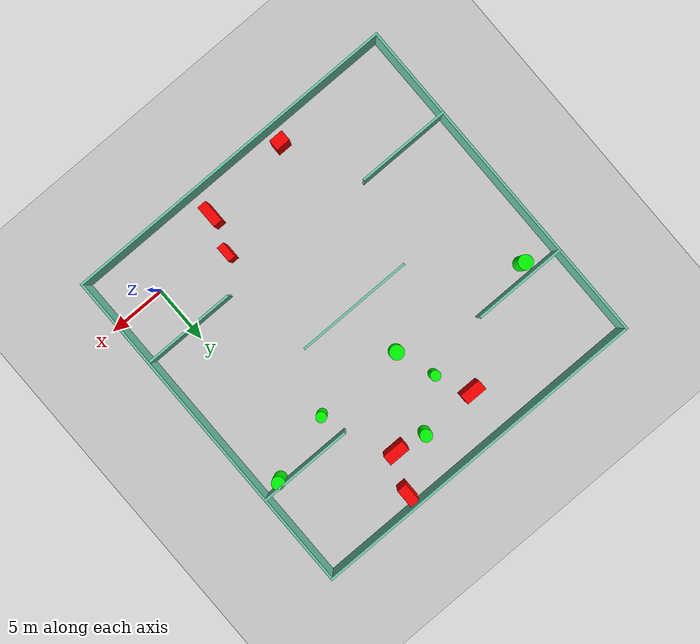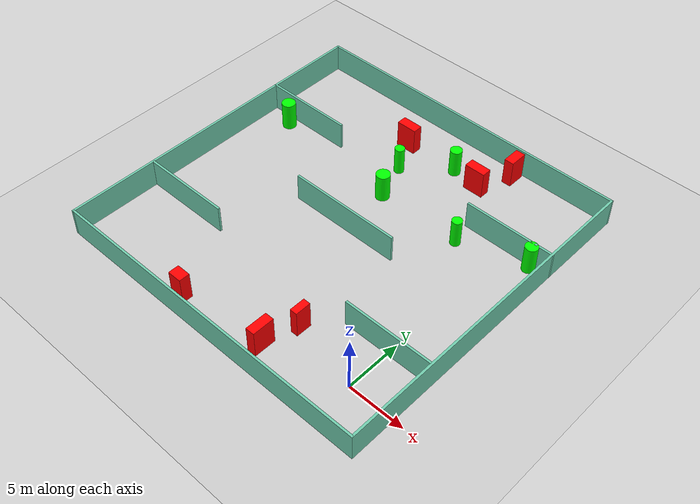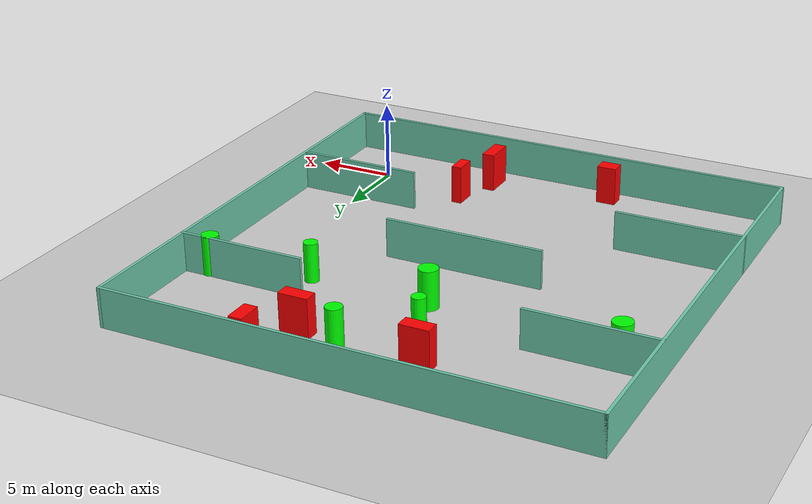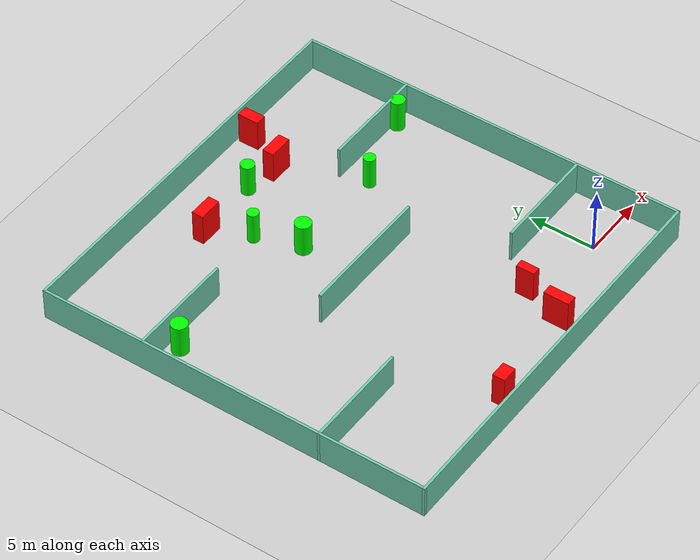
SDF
<sdf version="1.7">
 <world name="default">
  <light name="sun" type="directional">
   <pose>0 0 10 0 -0 0</pose>
   <diffuse>0.8 0.8 0.8 1</diffuse>
   <specular>0.2 0.2 0.2 1</specular>
   <attenuation>
    <range>1000</range>
    <constant>0.9</constant>
    <linear>0.01</linear>
    <quadratic>0.001</quadratic>
   </attenuation>
   <direction>-0.5 0.1 -0.9</direction>
   <spot><inner_angle>0</inner_angle><outer_angle>0</outer_angle><falloff>0</falloff></spot>
  </light>
  <model name="ground_plane">
   <static>1</static>
   <link name="link">
    <collision name="collision">
     <geometry><plane><normal>0 0 1</normal><size>100 100</size></plane></geometry>
     <surface>
      <contact><collide_bitmask>65535</collide_bitmask></contact>
      <friction><ode><mu>100</mu><mu2>50</mu2></ode></friction>
     </surface>
    </collision>
    <visual name="visual">
     <cast_shadows>0</cast_shadows>
     <geometry><plane><normal>0 0 1</normal><size>100 100</size></plane></geometry>
     <material>
      <script><uri>file://media/materials/scripts/gazebo.material</uri><name>Gazebo/Grey</name></script>
     </material>
    </visual>
   </link>
  </model>
  <gravity>0 0 -9.8</gravity>
  <magnetic_field>6e-06 2.3e-05 -4.2e-05</magnetic_field>
  <atmosphere type="adiabatic"/>
  <physics type="ode">
   <max_step_size>0.001</max_step_size>
   <real_time_factor>1</real_time_factor>
   <real_time_update_rate>1000</real_time_update_rate>
  </physics>
  <scene><ambient>0.4 0.4 0.4 1</ambient><background>0.7 0.7 0.7 1</background><shadows>1</shadows></scene>
  <spherical_coordinates>
   <surface_model>EARTH_WGS84</surface_model>
   <latitude_deg>0</latitude_deg>
   <longitude_deg>0</longitude_deg>
   <elevation>0</elevation>
   <heading_deg>0</heading_deg>
  </spherical_coordinates>
  <model name="my_base_walls">
   <link name="Wall_10">
    <collision name="Wall_10_Collision">
     <geometry><box><size>8.2 0.2 2.5</size></box></geometry>
     <pose>0 0 1.25 0 -0 0</pose>
    </collision>
    <visual name="Wall_10_Visual">
     <pose>0 0 1.25 0 -0 0</pose>
     <geometry><box><size>8.2 0.2 2.5</size></box></geometry>
     <material>
      <script><uri>file://media/materials/scripts/gazebo.material</uri><name>Gazebo/Grey</name></script>
      <ambient>0.435294 0.796078 0.67451 1</ambient>
     </material>
     <meta><layer>0</layer></meta>
    </visual>
    <pose>-11 -7 0 0 -0 0</pose>
   </link>
   <link name="Wall_12">
    <collision name="Wall_12_Collision">
     <geometry><box><size>8.2 0.2 2.5</size></box></geometry>
     <pose>0 0 1.25 0 -0 0</pose>
    </collision>
    <visual name="Wall_12_Visual">
     <pose>0 0 1.25 0 -0 0</pose>
     <geometry><box><size>8.2 0.2 2.5</size></box></geometry>
     <material>
      <script><uri>file://media/materials/scripts/gazebo.material</uri><name>Gazebo/Grey</name></script>
      <ambient>0.435294 0.796078 0.67451 1</ambient>
     </material>
     <meta><layer>0</layer></meta>
    </visual>
    <pose>-11 7 0 0 -0 0</pose>
   </link>
   <link name="Wall_14">
    <collision name="Wall_14_Collision">
     <geometry><box><size>8.2 0.2 2.5</size></box></geometry>
     <pose>0 0 1.25 0 -0 0</pose>
    </collision>
    <visual name="Wall_14_Visual">
     <pose>0 0 1.25 0 -0 0</pose>
     <geometry><box><size>8.2 0.2 2.5</size></box></geometry>
     <material>
      <script><uri>file://media/materials/scripts/gazebo.material</uri><name>Gazebo/Grey</name></script>
      <ambient>0.435294 0.796078 0.67451 1</ambient>
     </material>
     <meta><layer>0</layer></meta>
    </visual>
    <pose>11 7 0 0 -0 3.14159</pose>
   </link>
   <link name="Wall_16">
    <collision name="Wall_16_Collision">
     <geometry><box><size>10.2 0.2 2.5</size></box></geometry>
     <pose>0 0 1.25 0 -0 0</pose>
    </collision>
    <visual name="Wall_16_Visual">
     <pose>0 0 1.25 0 -0 0</pose>
     <geometry><box><size>10.2 0.2 2.5</size></box></geometry>
     <material>
      <script><uri>file://media/materials/scripts/gazebo.material</uri><name>Gazebo/Grey</name></script>
      <ambient>0.435294 0.796078 0.67451 1</ambient>
     </material>
     <meta><layer>0</layer></meta>
    </visual>
    <pose>0 0 0 0 -0 3.14159</pose>
   </link>
   <link name="Wall_2">
    <collision name="Wall_2_Collision">
     <geometry><box><size>30.2 0.2 2.5</size></box></geometry>
     <pose>0 0 1.25 0 -0 0</pose>
    </collision>
    <visual name="Wall_2_Visual">
     <pose>0 0 1.25 0 -0 0</pose>
     <geometry><box><size>30.2 0.2 2.5</size></box></geometry>
     <material>
      <script><uri>file://media/materials/scripts/gazebo.material</uri><name>Gazebo/Grey</name></script>
      <ambient>0.435294 0.796078 0.67451 1</ambient>
     </material>
     <meta><layer>0</layer></meta>
    </visual>
    <pose>0 -15 0 0 -0 3.14159</pose>
   </link>
   <link name="Wall_3">
    <collision name="Wall_3_Collision">
     <geometry><box><size>30.2 0.2 2.5</size></box></geometry>
     <pose>0 0 1.25 0 -0 0</pose>
    </collision>
    <visual name="Wall_3_Visual">
     <pose>0 0 1.25 0 -0 0</pose>
     <geometry><box><size>30.2 0.2 2.5</size></box></geometry>
     <material>
      <script><uri>file://media/materials/scripts/gazebo.material</uri><name>Gazebo/Grey</name></script>
      <ambient>0.435294 0.796078 0.67451 1</ambient>
     </material>
     <meta><layer>0</layer></meta>
    </visual>
    <pose>-15 0 0 0 -0 1.5708</pose>
   </link>
   <link name="Wall_4">
    <collision name="Wall_4_Collision">
     <geometry><box><size>30.2 0.2 2.5</size></box></geometry>
     <pose>0 0 1.25 0 -0 0</pose>
    </collision>
    <visual name="Wall_4_Visual">
     <pose>0 0 1.25 0 -0 0</pose>
     <geometry><box><size>30.2 0.2 2.5</size></box></geometry>
     <material>
      <script><uri>file://media/materials/scripts/gazebo.material</uri><name>Gazebo/Grey</name></script>
      <ambient>0.435294 0.796078 0.67451 1</ambient>
     </material>
     <meta><layer>0</layer></meta>
    </visual>
    <pose>0 15 0 0 -0 0</pose>
   </link>
   <link name="Wall_6">
    <collision name="Wall_6_Collision">
     <geometry><box><size>30.2 0.2 2.5</size></box></geometry>
     <pose>0 0 1.25 0 -0 0</pose>
    </collision>
    <visual name="Wall_6_Visual">
     <pose>0 0 1.25 0 -0 0</pose>
     <geometry><box><size>30.2 0.2 2.5</size></box></geometry>
     <material>
      <script><uri>file://media/materials/scripts/gazebo.material</uri><name>Gazebo/Grey</name></script>
      <ambient>0.435294 0.796078 0.67451 1</ambient>
     </material>
     <meta><layer>0</layer></meta>
    </visual>
    <pose>15 0 0 0 -0 1.5708</pose>
   </link>
   <link name="Wall_8">
    <collision name="Wall_8_Collision">
     <geometry><box><size>8.2 0.2 2.5</size></box></geometry>
     <pose>0 0 1.25 0 -0 0</pose>
    </collision>
    <visual name="Wall_8_Visual">
     <pose>0 0 1.25 0 -0 0</pose>
     <geometry><box><size>8.2 0.2 2.5</size></box></geometry>
     <material>
      <script><uri>file://media/materials/scripts/gazebo.material</uri><name>Gazebo/Grey</name></script>
      <ambient>0.435294 0.796078 0.67451 1</ambient>
     </material>
     <meta><layer>0</layer></meta>
    </visual>
    <pose>11 -7 0 0 -0 3.14159</pose>
   </link>
   <static>1</static>
   <pose>-11 11 0 0 -0 0</pose>
  </model>
  <model name="cylinder1">
   <static>1</static>
   <link name="link">
    <inertial>
     <mass>1</mass>
     <inertia><ixx>0.5</ixx><ixy>0</ixy><ixz>0</ixz><iyy>0.5</iyy><iyz>0</iyz><izz>1</izz></inertia>
    </inertial>
    <collision name="collision">
     <geometry><cylinder><radius>0.6146313226498061</radius><length>2.5</length></cylinder></geometry>
    </collision>
    <visual name="visual">
     <geometry><cylinder><radius>0.6146313226498061</radius><length>2.5</length></cylinder></geometry>
     <material>
      <ambient>0 1 0 1</ambient>
      <diffuse>0 1 0 1</diffuse>
      <specular>0.1 0.1 0.1 1</specular>
      <emissive>0 0 0 0</emissive>
     </material>
    </visual>
   </link>
   <pose>-11.217696348017217 15.870508143737354 1.25 0 0 0</pose>
  </model>
  <model name="cylinder2">
   <static>1</static>
   <link name="link">
    <inertial>
     <mass>1</mass>
     <inertia><ixx>0.5</ixx><ixy>0</ixy><ixz>0</ixz><iyy>0.5</iyy><iyz>0</iyz><izz>1</izz></inertia>
    </inertial>
    <collision name="collision">
     <geometry><cylinder><radius>0.5490993173281343</radius><length>2.5</length></cylinder></geometry>
    </collision>
    <visual name="visual">
     <geometry><cylinder><radius>0.5490993173281343</radius><length>2.5</length></cylinder></geometry>
     <material>
      <ambient>0 1 0 1</ambient>
      <diffuse>0 1 0 1</diffuse>
      <specular>0.1 0.1 0.1 1</specular>
      <emissive>0 0 0 0</emissive>
     </material>
    </visual>
   </link>
   <pose>2.380300642804496 17.619412869230977 1.25 0 0 0</pose>
  </model>
  <model name="cylinder3">
   <static>1</static>
   <link name="link">
    <inertial>
     <mass>1</mass>
     <inertia><ixx>0.5</ixx><ixy>0</ixy><ixz>0</ixz><iyy>0.5</iyy><iyz>0</iyz><izz>1</izz></inertia>
    </inertial>
    <collision name="collision">
     <geometry><cylinder><radius>0.4442733270552072</radius><length>2.5</length></cylinder></geometry>
    </collision>
    <visual name="visual">
     <geometry><cylinder><radius>0.4442733270552072</radius><length>2.5</length></cylinder></geometry>
     <material>
      <ambient>0 1 0 1</ambient>
      <diffuse>0 1 0 1</diffuse>
      <specular>0.1 0.1 0.1 1</specular>
      <emissive>0 0 0 0</emissive>
     </material>
    </visual>
   </link>
   <pose>-3.485512649510138 15.878220687689954 1.25 0 0 0</pose>
  </model>
  <model name="cylinder4">
   <static>1</static>
   <link name="link">
    <inertial>
     <mass>1</mass>
     <inertia><ixx>0.5</ixx><ixy>0</ixy><ixz>0</ixz><iyy>0.5</iyy><iyz>0</iyz><izz>1</izz></inertia>
    </inertial>
    <collision name="collision">
     <geometry><cylinder><radius>0.6170337434476643</radius><length>2.5</length></cylinder></geometry>
    </collision>
    <visual name="visual">
     <geometry><cylinder><radius>0.6170337434476643</radius><length>2.5</length></cylinder></geometry>
     <material>
      <ambient>0 1 0 1</ambient>
      <diffuse>0 1 0 1</diffuse>
      <specular>0.1 0.1 0.1 1</specular>
      <emissive>0 0 0 0</emissive>
     </material>
    </visual>
   </link>
   <pose>-23.36715872037292 17.011823218086587 1.25 0 0 0</pose>
  </model>
  <model name="cylinder5">
   <static>1</static>
   <link name="link">
    <inertial>
     <mass>1</mass>
     <inertia><ixx>0.5</ixx><ixy>0</ixy><ixz>0</ixz><iyy>0.5</iyy><iyz>0</iyz><izz>1</izz></inertia>
    </inertial>
    <collision name="collision">
     <geometry><cylinder><radius>0.5186653814415206</radius><length>2.5</length></cylinder></geometry>
    </collision>
    <visual name="visual">
     <geometry><cylinder><radius>0.5186653814415206</radius><length>2.5</length></cylinder></geometry>
     <material>
      <ambient>0 1 0 1</ambient>
      <diffuse>0 1 0 1</diffuse>
      <specular>0.1 0.1 0.1 1</specular>
      <emissive>0 0 0 0</emissive>
     </material>
    </visual>
   </link>
   <pose>-8.764636521096364 22.256595530674254 1.25 0 0 0</pose>
  </model>
  <model name="cylinder6">
   <static>1</static>
   <link name="link">
    <inertial>
     <mass>1</mass>
     <inertia><ixx>0.5</ixx><ixy>0</ixy><ixz>0</ixz><iyy>0.5</iyy><iyz>0</iyz><izz>1</izz></inertia>
    </inertial>
    <collision name="collision">
     <geometry><cylinder><radius>0.4354721688260584</radius><length>2.5</length></cylinder></geometry>
    </collision>
    <visual name="visual">
     <geometry><cylinder><radius>0.4354721688260584</radius><length>2.5</length></cylinder></geometry>
     <material>
      <ambient>0 1 0 1</ambient>
      <diffuse>0 1 0 1</diffuse>
      <specular>0.1 0.1 0.1 1</specular>
      <emissive>0 0 0 0</emissive>
     </material>
    </visual>
   </link>
   <pose>-12.329657343554652 19.187704024800613 1.25 0 0 0</pose>
  </model>
  <model name="box1">
   <static>1</static>
   <link name="link">
    <inertial>
     <mass>1</mass>
     <inertia><ixx>0.083</ixx><ixy>0</ixy><ixz>0</ixz><iyy>0.083</iyy><iyz>0</iyz><izz>0.083</izz></inertia>
    </inertial>
    <collision name="collision">
     <geometry><box><size>1.8445313855981942 0.8780549174050458 2.5</size></box></geometry>
    </collision>
    <visual name="visual">
     <geometry><box><size>1.8445313855981942 0.8780549174050458 2.5</size></box></geometry>
     <material>
      <ambient>1 0 0 1</ambient>
      <diffuse>1 0 0 1</diffuse>
      <specular>0.1 0.1 0.1 1</specular>
      <emissive>0 0 0 0</emissive>
     </material>
    </visual>
    <sensor name="my_contact" type="contact">
     <contact><collision>box_collision</collision><topic>__default_topic__</topic></contact>
    </sensor>
   </link>
   <pose>-13.746110273519262 22.07115543668126 1.25 0 0 0</pose>
  </model>
  <model name="box2">
   <static>1</static>
   <link name="link">
    <inertial>
     <mass>1</mass>
     <inertia><ixx>0.083</ixx><ixy>0</ixy><ixz>0</ixz><iyy>0.083</iyy><iyz>0</iyz><izz>0.083</izz></inertia>
    </inertial>
    <collision name="collision">
     <geometry><box><size>1.8691126657783956 0.8838013225038346 2.5</size></box></geometry>
    </collision>
    <visual name="visual">
     <geometry><box><size>1.8691126657783956 0.8838013225038346 2.5</size></box></geometry>
     <material>
      <ambient>1 0 0 1</ambient>
      <diffuse>1 0 0 1</diffuse>
      <specular>0.1 0.1 0.1 1</specular>
      <emissive>0 0 0 0</emissive>
     </material>
    </visual>
    <sensor name="my_contact" type="contact">
     <contact><collision>box_collision</collision><topic>__default_topic__</topic></contact>
    </sensor>
   </link>
   <pose>-6.125762566244671 21.79309800327996 1.25 0 0 0</pose>
  </model>
  <model name="box3">
   <static>1</static>
   <link name="link">
    <inertial>
     <mass>1</mass>
     <inertia><ixx>0.083</ixx><ixy>0</ixy><ixz>0</ixz><iyy>0.083</iyy><iyz>0</iyz><izz>0.083</izz></inertia>
    </inertial>
    <collision name="collision">
     <geometry><box><size>0.8556049066416325 1.6168875658188593 2.5</size></box></geometry>
    </collision>
    <visual name="visual">
     <geometry><box><size>0.8556049066416325 1.6168875658188593 2.5</size></box></geometry>
     <material>
      <ambient>1 0 0 1</ambient>
      <diffuse>1 0 0 1</diffuse>
      <specular>0.1 0.1 0.1 1</specular>
      <emissive>0 0 0 0</emissive>
     </material>
    </visual>
    <sensor name="my_contact" type="contact">
     <contact><collision>box_collision</collision><topic>__default_topic__</topic></contact>
    </sensor>
   </link>
   <pose>-4.696467181882076 24.905264674584494 1.25 0 0 0</pose>
  </model>
  <model name="box4">
   <static>1</static>
   <link name="link">
    <inertial>
     <mass>1</mass>
     <inertia><ixx>0.083</ixx><ixy>0</ixy><ixz>0</ixz><iyy>0.083</iyy><iyz>0</iyz><izz>0.083</izz></inertia>
    </inertial>
    <collision name="collision">
     <geometry><box><size>0.8052473511010065 1.9451142129372803 2.5</size></box></geometry>
    </collision>
    <visual name="visual">
     <geometry><box><size>0.8052473511010065 1.9451142129372803 2.5</size></box></geometry>
     <material>
      <ambient>1 0 0 1</ambient>
      <diffuse>1 0 0 1</diffuse>
      <specular>0.1 0.1 0.1 1</specular>
      <emissive>0 0 0 0</emissive>
     </material>
    </visual>
    <sensor name="my_contact" type="contact">
     <contact><collision>box_collision</collision><topic>__default_topic__</topic></contact>
    </sensor>
   </link>
   <pose>-7.106759204360916 -1.7383487468724987 1.25 0 0 0</pose>
  </model>
  <model name="box5">
   <static>1</static>
   <link name="link">
    <inertial>
     <mass>1</mass>
     <inertia><ixx>0.083</ixx><ixy>0</ixy><ixz>0</ixz><iyy>0.083</iyy><iyz>0</iyz><izz>0.083</izz></inertia>
    </inertial>
    <collision name="collision">
     <geometry><box><size>1.254118116836406 0.9448352780860066 2.5</size></box></geometry>
    </collision>
    <visual name="visual">
     <geometry><box><size>1.254118116836406 0.9448352780860066 2.5</size></box></geometry>
     <material>
      <ambient>1 0 0 1</ambient>
      <diffuse>1 0 0 1</diffuse>
      <specular>0.1 0.1 0.1 1</specular>
      <emissive>0 0 0 0</emissive>
     </material>
    </visual>
    <sensor name="my_contact" type="contact">
     <contact><collision>box_collision</collision><topic>__default_topic__</topic></contact>
    </sensor>
   </link>
   <pose>-14.928258968016113 -2.5785798296641107 1.25 0 0 0</pose>
  </model>
  <model name="box6">
   <static>1</static>
   <link name="link">
    <inertial>
     <mass>1</mass>
     <inertia><ixx>0.083</ixx><ixy>0</ixy><ixz>0</ixz><iyy>0.083</iyy><iyz>0</iyz><izz>0.083</izz></inertia>
    </inertial>
    <collision name="collision">
     <geometry><box><size>0.646825632184593 1.4005041058445942 2.5</size></box></geometry>
    </collision>
    <visual name="visual">
     <geometry><box><size>0.646825632184593 1.4005041058445942 2.5</size></box></geometry>
     <material>
      <ambient>1 0 0 1</ambient>
      <diffuse>1 0 0 1</diffuse>
      <specular>0.1 0.1 0.1 1</specular>
      <emissive>0 0 0 0</emissive>
     </material>
    </visual>
    <sensor name="my_contact" type="contact">
     <contact><collision>box_collision</collision><topic>__default_topic__</topic></contact>
    </sensor>
   </link>
   <pose>-6.151394746310386 1.3408013628799438 1.25 0 0 0</pose>
  </model>
 </world>
</sdf>
